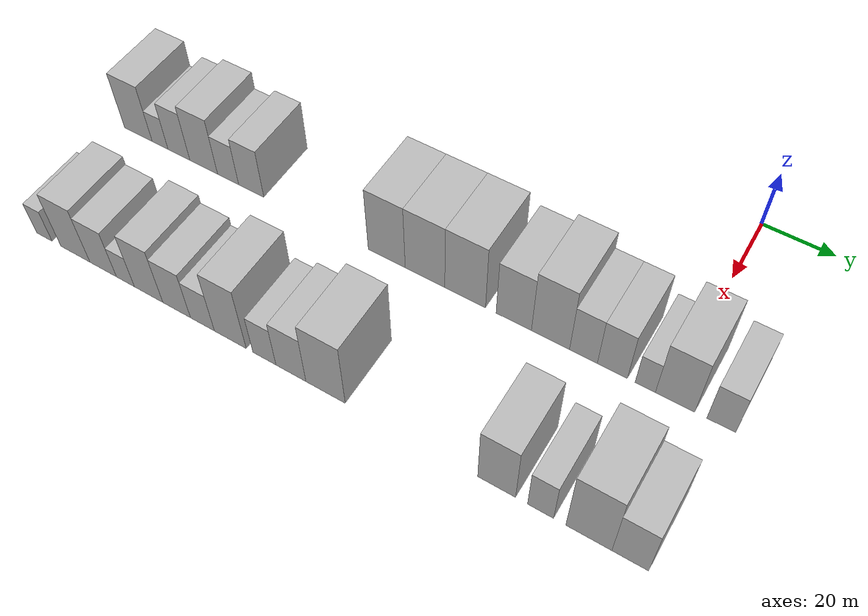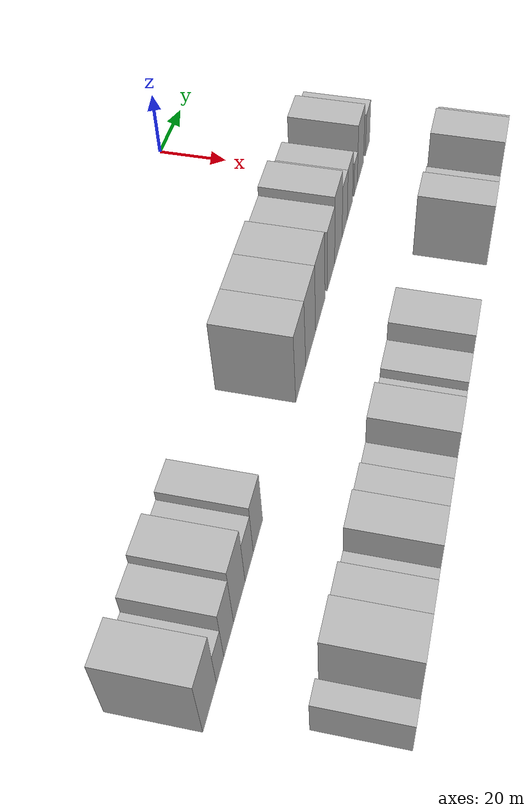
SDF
<sdf version="1.6">
 <world name="default">
  <model name="building_17">
   <static>1</static>
   <pose>50.0000 -159.4956 0 0.000000 0.000000 0.000000</pose>
   <link name="link">
    <pose>0 0 10.50 0 0 0</pose>
    <collision name="collision"><geometry><box><size>20.0000 9.8298 21.0000</size></box></geometry></collision>
    <visual name="visual">
     <cast_shadows>0</cast_shadows>
     <geometry><box><size>20.0000 9.8298 21.0000</size></box></geometry>
     <material>
      <script>
       <uri>model://HANNAS_wall/materials/scripts</uri>
       <uri>model://HANNAS_wall/materials/textures</uri>
       <name>vrc/HANNAS_wall</name>
      </script>
     </material>
    </visual>
   </link>
  </model>
  <model name="building_18">
   <static>1</static>
   <pose>50.0000 -151.7910 0 0.000000 0.000000 0.000000</pose>
   <link name="link">
    <pose>0 0 6.00 0 0 0</pose>
    <collision name="collision"><geometry><box><size>20.0000 5.5794 12.0000</size></box></geometry></collision>
    <visual name="visual">
     <cast_shadows>0</cast_shadows>
     <geometry><box><size>20.0000 5.5794 12.0000</size></box></geometry>
     <material>
      <script>
       <uri>model://HANNAS_wall/materials/scripts</uri>
       <uri>model://HANNAS_wall/materials/textures</uri>
       <name>vrc/HANNAS_wall</name>
      </script>
     </material>
    </visual>
   </link>
  </model>
  <model name="building_19">
   <static>1</static>
   <pose>50.0000 -145.2090 0 0.000000 0.000000 0.000000</pose>
   <link name="link">
    <pose>0 0 9.00 0 0 0</pose>
    <collision name="collision"><geometry><box><size>20.0000 7.5845 18.0000</size></box></geometry></collision>
    <visual name="visual">
     <cast_shadows>0</cast_shadows>
     <geometry><box><size>20.0000 7.5845 18.0000</size></box></geometry>
     <material>
      <script>
       <uri>model://HANNAS_wall/materials/scripts</uri>
       <uri>model://HANNAS_wall/materials/textures</uri>
       <name>vrc/HANNAS_wall</name>
      </script>
     </material>
    </visual>
   </link>
  </model>
  <model name="building_20">
   <static>1</static>
   <pose>50.0000 -136.6767 0 0.000000 0.000000 0.000000</pose>
   <link name="link">
    <pose>0 0 10.50 0 0 0</pose>
    <collision name="collision"><geometry><box><size>20.0000 9.4801 21.0000</size></box></geometry></collision>
    <visual name="visual">
     <cast_shadows>0</cast_shadows>
     <geometry><box><size>20.0000 9.4801 21.0000</size></box></geometry>
     <material>
      <script>
       <uri>model://HANNAS_wall/materials/scripts</uri>
       <uri>model://HANNAS_wall/materials/textures</uri>
       <name>vrc/HANNAS_wall</name>
      </script>
     </material>
    </visual>
   </link>
  </model>
  <model name="building_21">
   <static>1</static>
   <pose>50.0000 -128.4001 0 0.000000 0.000000 0.000000</pose>
   <link name="link">
    <pose>0 0 7.50 0 0 0</pose>
    <collision name="collision"><geometry><box><size>20.0000 7.0731 15.0000</size></box></geometry></collision>
    <visual name="visual">
     <cast_shadows>0</cast_shadows>
     <geometry><box><size>20.0000 7.0731 15.0000</size></box></geometry>
     <material>
      <script>
       <uri>model://HANNAS_wall/materials/scripts</uri>
       <uri>model://HANNAS_wall/materials/textures</uri>
       <name>vrc/HANNAS_wall</name>
      </script>
     </material>
    </visual>
   </link>
  </model>
  <model name="building_22">
   <static>1</static>
   <pose>50.0000 -120.6991 0 0.000000 0.000000 0.000000</pose>
   <link name="link">
    <pose>0 0 9.00 0 0 0</pose>
    <collision name="collision"><geometry><box><size>20.0000 8.3287 18.0000</size></box></geometry></collision>
    <visual name="visual">
     <cast_shadows>0</cast_shadows>
     <geometry><box><size>20.0000 8.3287 18.0000</size></box></geometry>
     <material>
      <script>
       <uri>model://HANNAS_wall/materials/scripts</uri>
       <uri>model://HANNAS_wall/materials/textures</uri>
       <name>vrc/HANNAS_wall</name>
      </script>
     </material>
    </visual>
   </link>
  </model>
  <model name="building_23">
   <static>1</static>
   <pose>50.0000 -77.7936 0 0.000000 0.000000 0.000000</pose>
   <link name="link">
    <pose>0 0 12.00 0 0 0</pose>
    <collision name="collision"><geometry><box><size>20.0000 11.1608 24.0000</size></box></geometry></collision>
    <visual name="visual">
     <cast_shadows>0</cast_shadows>
     <geometry><box><size>20.0000 11.1608 24.0000</size></box></geometry>
     <material>
      <script>
       <uri>model://HANNAS_wall/materials/scripts</uri>
       <uri>model://HANNAS_wall/materials/textures</uri>
       <name>vrc/HANNAS_wall</name>
      </script>
     </material>
    </visual>
   </link>
  </model>
  <model name="building_24">
   <static>1</static>
   <pose>50.0000 -66.3565 0 0.000000 0.000000 0.000000</pose>
   <link name="link">
    <pose>0 0 12.00 0 0 0</pose>
    <collision name="collision"><geometry><box><size>20.0000 11.7134 24.0000</size></box></geometry></collision>
    <visual name="visual">
     <cast_shadows>0</cast_shadows>
     <geometry><box><size>20.0000 11.7134 24.0000</size></box></geometry>
     <material>
      <script>
       <uri>model://HANNAS_wall/materials/scripts</uri>
       <uri>model://HANNAS_wall/materials/textures</uri>
       <name>vrc/HANNAS_wall</name>
      </script>
     </material>
    </visual>
   </link>
  </model>
  <model name="building_25">
   <static>1</static>
   <pose>50.0000 -54.6394 0 0.000000 0.000000 0.000000</pose>
   <link name="link">
    <pose>0 0 12.00 0 0 0</pose>
    <collision name="collision"><geometry><box><size>20.0000 11.7207 24.0000</size></box></geometry></collision>
    <visual name="visual">
     <cast_shadows>0</cast_shadows>
     <geometry><box><size>20.0000 11.7207 24.0000</size></box></geometry>
     <material>
      <script>
       <uri>model://HANNAS_wall/materials/scripts</uri>
       <uri>model://HANNAS_wall/materials/textures</uri>
       <name>vrc/HANNAS_wall</name>
      </script>
     </material>
    </visual>
   </link>
  </model>
  <model name="building_26">
   <static>1</static>
   <pose>50.0000 -40.8496 0 0.000000 0.000000 0.000000</pose>
   <link name="link">
    <pose>0 0 10.50 0 0 0</pose>
    <collision name="collision"><geometry><box><size>20.0000 9.8590 21.0000</size></box></geometry></collision>
    <visual name="visual">
     <cast_shadows>0</cast_shadows>
     <geometry><box><size>20.0000 9.8590 21.0000</size></box></geometry>
     <material>
      <script>
       <uri>model://HANNAS_wall/materials/scripts</uri>
       <uri>model://HANNAS_wall/materials/textures</uri>
       <name>vrc/HANNAS_wall</name>
      </script>
     </material>
    </visual>
   </link>
  </model>
  <model name="building_27">
   <static>1</static>
   <pose>50.0000 -30.7052 0 0.000000 0.000000 0.000000</pose>
   <link name="link">
    <pose>0 0 12.00 0 0 0</pose>
    <collision name="collision"><geometry><box><size>20.0000 10.4298 24.0000</size></box></geometry></collision>
    <visual name="visual">
     <cast_shadows>0</cast_shadows>
     <geometry><box><size>20.0000 10.4298 24.0000</size></box></geometry>
     <material>
      <script>
       <uri>model://HANNAS_wall/materials/scripts</uri>
       <uri>model://HANNAS_wall/materials/textures</uri>
       <name>vrc/HANNAS_wall</name>
      </script>
     </material>
    </visual>
   </link>
  </model>
  <model name="building_28">
   <static>1</static>
   <pose>50.0000 -21.7638 0 0.000000 0.000000 0.000000</pose>
   <link name="link">
    <pose>0 0 9.00 0 0 0</pose>
    <collision name="collision"><geometry><box><size>20.0000 7.4530 18.0000</size></box></geometry></collision>
    <visual name="visual">
     <cast_shadows>0</cast_shadows>
     <geometry><box><size>20.0000 7.4530 18.0000</size></box></geometry>
     <material>
      <script>
       <uri>model://HANNAS_wall/materials/scripts</uri>
       <uri>model://HANNAS_wall/materials/textures</uri>
       <name>vrc/HANNAS_wall</name>
      </script>
     </material>
    </visual>
   </link>
  </model>
  <model name="building_29">
   <static>1</static>
   <pose>50.0000 -14.0712 0 0.000000 0.000000 0.000000</pose>
   <link name="link">
    <pose>0 0 9.00 0 0 0</pose>
    <collision name="collision"><geometry><box><size>20.0000 7.9321 18.0000</size></box></geometry></collision>
    <visual name="visual">
     <cast_shadows>0</cast_shadows>
     <geometry><box><size>20.0000 7.9321 18.0000</size></box></geometry>
     <material>
      <script>
       <uri>model://HANNAS_wall/materials/scripts</uri>
       <uri>model://HANNAS_wall/materials/textures</uri>
       <name>vrc/HANNAS_wall</name>
      </script>
     </material>
    </visual>
   </link>
  </model>
  <model name="building_30">
   <static>1</static>
   <pose>50.0000 -5.4879 0 0.000000 0.000000 0.000000</pose>
   <link name="link">
    <pose>0 0 6.00 0 0 0</pose>
    <collision name="collision"><geometry><box><size>20.0000 5.2346 12.0000</size></box></geometry></collision>
    <visual name="visual">
     <cast_shadows>0</cast_shadows>
     <geometry><box><size>20.0000 5.2346 12.0000</size></box></geometry>
     <material>
      <script>
       <uri>model://HANNAS_wall/materials/scripts</uri>
       <uri>model://HANNAS_wall/materials/textures</uri>
       <name>vrc/HANNAS_wall</name>
      </script>
     </material>
    </visual>
   </link>
  </model>
  <model name="building_31">
   <static>1</static>
   <pose>50.0000 2.1301 0 0.000000 0.000000 0.000000</pose>
   <link name="link">
    <pose>0 0 10.50 0 0 0</pose>
    <collision name="collision"><geometry><box><size>20.0000 10.0014 21.0000</size></box></geometry></collision>
    <visual name="visual">
     <cast_shadows>0</cast_shadows>
     <geometry><box><size>20.0000 10.0014 21.0000</size></box></geometry>
     <material>
      <script>
       <uri>model://HANNAS_wall/materials/scripts</uri>
       <uri>model://HANNAS_wall/materials/textures</uri>
       <name>vrc/HANNAS_wall</name>
      </script>
     </material>
    </visual>
   </link>
  </model>
  <model name="building_32">
   <static>1</static>
   <pose>50.0000 13.6980 0 0.000000 0.000000 0.000000</pose>
   <link name="link">
    <pose>0 0 7.50 0 0 0</pose>
    <collision name="collision"><geometry><box><size>20.0000 7.1344 15.0000</size></box></geometry></collision>
    <visual name="visual">
     <cast_shadows>0</cast_shadows>
     <geometry><box><size>20.0000 7.1344 15.0000</size></box></geometry>
     <material>
      <script>
       <uri>model://HANNAS_wall/materials/scripts</uri>
       <uri>model://HANNAS_wall/materials/textures</uri>
       <name>vrc/HANNAS_wall</name>
      </script>
     </material>
    </visual>
   </link>
  </model>
  <model name="building_79">
   <static>1</static>
   <pose>90.0000 -157.2036 0 0.000000 0.000000 0.000000</pose>
   <link name="link">
    <pose>0 0 6.00 0 0 0</pose>
    <collision name="collision"><geometry><box><size>20.0000 5.3159 12.0000</size></box></geometry></collision>
    <visual name="visual">
     <cast_shadows>0</cast_shadows>
     <geometry><box><size>20.0000 5.3159 12.0000</size></box></geometry>
     <material>
      <script>
       <uri>model://HANNAS_wall/materials/scripts</uri>
       <uri>model://HANNAS_wall/materials/textures</uri>
       <name>vrc/HANNAS_wall</name>
      </script>
     </material>
    </visual>
   </link>
  </model>
  <model name="building_80">
   <static>1</static>
   <pose>90.0000 -146.6384 0 0.000000 0.000000 0.000000</pose>
   <link name="link">
    <pose>0 0 10.50 0 0 0</pose>
    <collision name="collision"><geometry><box><size>20.0000 9.8146 21.0000</size></box></geometry></collision>
    <visual name="visual">
     <cast_shadows>0</cast_shadows>
     <geometry><box><size>20.0000 9.8146 21.0000</size></box></geometry>
     <material>
      <script>
       <uri>model://HANNAS_wall/materials/scripts</uri>
       <uri>model://HANNAS_wall/materials/textures</uri>
       <name>vrc/HANNAS_wall</name>
      </script>
     </material>
    </visual>
   </link>
  </model>
  <model name="building_81">
   <static>1</static>
   <pose>90.0000 -137.3453 0 0.000000 0.000000 0.000000</pose>
   <link name="link">
    <pose>0 0 9.00 0 0 0</pose>
    <collision name="collision"><geometry><box><size>20.0000 8.7716 18.0000</size></box></geometry></collision>
    <visual name="visual">
     <cast_shadows>0</cast_shadows>
     <geometry><box><size>20.0000 8.7716 18.0000</size></box></geometry>
     <material>
      <script>
       <uri>model://HANNAS_wall/materials/scripts</uri>
       <uri>model://HANNAS_wall/materials/textures</uri>
       <name>vrc/HANNAS_wall</name>
      </script>
     </material>
    </visual>
   </link>
  </model>
  <model name="building_82">
   <static>1</static>
   <pose>90.0000 -130.0260 0 0.000000 0.000000 0.000000</pose>
   <link name="link">
    <pose>0 0 6.00 0 0 0</pose>
    <collision name="collision"><geometry><box><size>20.0000 5.8669 12.0000</size></box></geometry></collision>
    <visual name="visual">
     <cast_shadows>0</cast_shadows>
     <geometry><box><size>20.0000 5.8669 12.0000</size></box></geometry>
     <material>
      <script>
       <uri>model://HANNAS_wall/materials/scripts</uri>
       <uri>model://HANNAS_wall/materials/textures</uri>
       <name>vrc/HANNAS_wall</name>
      </script>
     </material>
    </visual>
   </link>
  </model>
  <model name="building_83">
   <static>1</static>
   <pose>90.0000 -122.5373 0 0.000000 0.000000 0.000000</pose>
   <link name="link">
    <pose>0 0 10.50 0 0 0</pose>
    <collision name="collision"><geometry><box><size>20.0000 9.1106 21.0000</size></box></geometry></collision>
    <visual name="visual">
     <cast_shadows>0</cast_shadows>
     <geometry><box><size>20.0000 9.1106 21.0000</size></box></geometry>
     <material>
      <script>
       <uri>model://HANNAS_wall/materials/scripts</uri>
       <uri>model://HANNAS_wall/materials/textures</uri>
       <name>vrc/HANNAS_wall</name>
      </script>
     </material>
    </visual>
   </link>
  </model>
  <model name="building_84">
   <static>1</static>
   <pose>90.0000 -113.6392 0 0.000000 0.000000 0.000000</pose>
   <link name="link">
    <pose>0 0 9.00 0 0 0</pose>
    <collision name="collision"><geometry><box><size>20.0000 8.6855 18.0000</size></box></geometry></collision>
    <visual name="visual">
     <cast_shadows>0</cast_shadows>
     <geometry><box><size>20.0000 8.6855 18.0000</size></box></geometry>
     <material>
      <script>
       <uri>model://HANNAS_wall/materials/scripts</uri>
       <uri>model://HANNAS_wall/materials/textures</uri>
       <name>vrc/HANNAS_wall</name>
      </script>
     </material>
    </visual>
   </link>
  </model>
  <model name="building_85">
   <static>1</static>
   <pose>90.0000 -105.5969 0 0.000000 0.000000 0.000000</pose>
   <link name="link">
    <pose>0 0 7.50 0 0 0</pose>
    <collision name="collision"><geometry><box><size>20.0000 7.3992 15.0000</size></box></geometry></collision>
    <visual name="visual">
     <cast_shadows>0</cast_shadows>
     <geometry><box><size>20.0000 7.3992 15.0000</size></box></geometry>
     <material>
      <script>
       <uri>model://HANNAS_wall/materials/scripts</uri>
       <uri>model://HANNAS_wall/materials/textures</uri>
       <name>vrc/HANNAS_wall</name>
      </script>
     </material>
    </visual>
   </link>
  </model>
  <model name="building_86">
   <static>1</static>
   <pose>90.0000 -97.0830 0 0.000000 0.000000 0.000000</pose>
   <link name="link">
    <pose>0 0 12.00 0 0 0</pose>
    <collision name="collision"><geometry><box><size>20.0000 9.6287 24.0000</size></box></geometry></collision>
    <visual name="visual">
     <cast_shadows>0</cast_shadows>
     <geometry><box><size>20.0000 9.6287 24.0000</size></box></geometry>
     <material>
      <script>
       <uri>model://HANNAS_wall/materials/scripts</uri>
       <uri>model://HANNAS_wall/materials/textures</uri>
       <name>vrc/HANNAS_wall</name>
      </script>
     </material>
    </visual>
   </link>
  </model>
  <model name="building_87">
   <static>1</static>
   <pose>90.0000 -86.8640 0 0.000000 0.000000 0.000000</pose>
   <link name="link">
    <pose>0 0 7.50 0 0 0</pose>
    <collision name="collision"><geometry><box><size>20.0000 6.8093 15.0000</size></box></geometry></collision>
    <visual name="visual">
     <cast_shadows>0</cast_shadows>
     <geometry><box><size>20.0000 6.8093 15.0000</size></box></geometry>
     <material>
      <script>
       <uri>model://HANNAS_wall/materials/scripts</uri>
       <uri>model://HANNAS_wall/materials/textures</uri>
       <name>vrc/HANNAS_wall</name>
      </script>
     </material>
    </visual>
   </link>
  </model>
  <model name="building_88">
   <static>1</static>
   <pose>90.0000 -79.1011 0 0.000000 0.000000 0.000000</pose>
   <link name="link">
    <pose>0 0 9.00 0 0 0</pose>
    <collision name="collision"><geometry><box><size>20.0000 8.7165 18.0000</size></box></geometry></collision>
    <visual name="visual">
     <cast_shadows>0</cast_shadows>
     <geometry><box><size>20.0000 8.7165 18.0000</size></box></geometry>
     <material>
      <script>
       <uri>model://HANNAS_wall/materials/scripts</uri>
       <uri>model://HANNAS_wall/materials/textures</uri>
       <name>vrc/HANNAS_wall</name>
      </script>
     </material>
    </visual>
   </link>
  </model>
  <model name="building_89">
   <static>1</static>
   <pose>90.0000 -69.1497 0 0.000000 0.000000 0.000000</pose>
   <link name="link">
    <pose>0 0 12.00 0 0 0</pose>
    <collision name="collision"><geometry><box><size>20.0000 11.1864 24.0000</size></box></geometry></collision>
    <visual name="visual">
     <cast_shadows>0</cast_shadows>
     <geometry><box><size>20.0000 11.1864 24.0000</size></box></geometry>
     <material>
      <script>
       <uri>model://HANNAS_wall/materials/scripts</uri>
       <uri>model://HANNAS_wall/materials/textures</uri>
       <name>vrc/HANNAS_wall</name>
      </script>
     </material>
    </visual>
   </link>
  </model>
  <model name="building_90">
   <static>1</static>
   <pose>90.0000 -23.0696 0 0.000000 0.000000 0.000000</pose>
   <link name="link">
    <pose>0 0 10.50 0 0 0</pose>
    <collision name="collision"><geometry><box><size>20.0000 9.6579 21.0000</size></box></geometry></collision>
    <visual name="visual">
     <cast_shadows>0</cast_shadows>
     <geometry><box><size>20.0000 9.6579 21.0000</size></box></geometry>
     <material>
      <script>
       <uri>model://HANNAS_wall/materials/scripts</uri>
       <uri>model://HANNAS_wall/materials/textures</uri>
       <name>vrc/HANNAS_wall</name>
      </script>
     </material>
    </visual>
   </link>
  </model>
  <model name="building_91">
   <static>1</static>
   <pose>90.0000 -12.0078 0 0.000000 0.000000 0.000000</pose>
   <link name="link">
    <pose>0 0 7.50 0 0 0</pose>
    <collision name="collision"><geometry><box><size>20.0000 6.4658 15.0000</size></box></geometry></collision>
    <visual name="visual">
     <cast_shadows>0</cast_shadows>
     <geometry><box><size>20.0000 6.4658 15.0000</size></box></geometry>
     <material>
      <script>
       <uri>model://HANNAS_wall/materials/scripts</uri>
       <uri>model://HANNAS_wall/materials/textures</uri>
       <name>vrc/HANNAS_wall</name>
      </script>
     </material>
    </visual>
   </link>
  </model>
  <model name="building_92">
   <static>1</static>
   <pose>90.0000 -0.2217 0 0.000000 0.000000 0.000000</pose>
   <link name="link">
    <pose>0 0 12.00 0 0 0</pose>
    <collision name="collision"><geometry><box><size>20.0000 11.1062 24.0000</size></box></geometry></collision>
    <visual name="visual">
     <cast_shadows>0</cast_shadows>
     <geometry><box><size>20.0000 11.1062 24.0000</size></box></geometry>
     <material>
      <script>
       <uri>model://HANNAS_wall/materials/scripts</uri>
       <uri>model://HANNAS_wall/materials/textures</uri>
       <name>vrc/HANNAS_wall</name>
      </script>
     </material>
    </visual>
   </link>
  </model>
  <model name="building_93">
   <static>1</static>
   <pose>90.0000 9.6624 0 0.000000 0.000000 0.000000</pose>
   <link name="link">
    <pose>0 0 9.00 0 0 0</pose>
    <collision name="collision"><geometry><box><size>20.0000 8.6620 18.0000</size></box></geometry></collision>
    <visual name="visual">
     <cast_shadows>0</cast_shadows>
     <geometry><box><size>20.0000 8.6620 18.0000</size></box></geometry>
     <material>
      <script>
       <uri>model://HANNAS_wall/materials/scripts</uri>
       <uri>model://HANNAS_wall/materials/textures</uri>
       <name>vrc/HANNAS_wall</name>
      </script>
     </material>
    </visual>
   </link>
  </model>
 </world>
</sdf>
